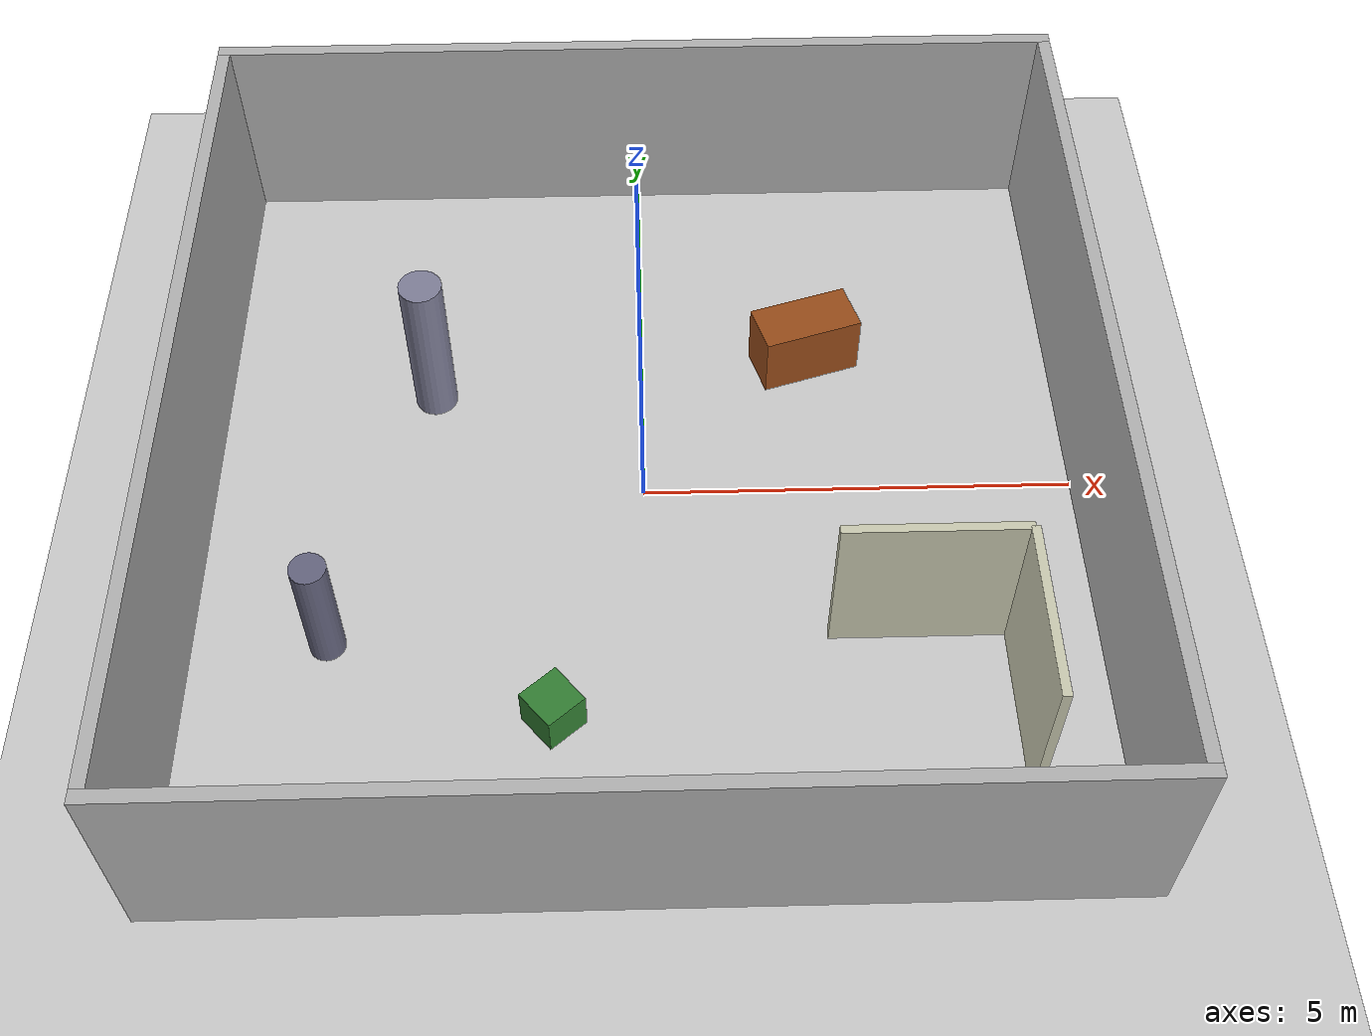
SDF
<sdf version="1.8">
 <world name="test_room">
  <plugin filename="ignition-gazebo-physics-system" name="ignition::gazebo::systems::Physics"/>
  <plugin filename="ignition-gazebo-sensors-system" name="ignition::gazebo::systems::Sensors">
   <render_engine>ogre2</render_engine>
  </plugin>
  <plugin filename="ignition-gazebo-scene-broadcaster-system" name="ignition::gazebo::systems::SceneBroadcaster"/>
  <plugin filename="ignition-gazebo-user-commands-system" name="ignition::gazebo::systems::UserCommands"/>
  <physics name="1ms" type="ode">
   <max_step_size>0.001</max_step_size>
   <real_time_factor>1.0</real_time_factor>
  </physics>
  <scene>
   <ambient>0.4 0.4 0.4 1.0</ambient>
   <background>0.7 0.8 0.9 1.0</background>
   <grid>true</grid>
   <origin_visual>true</origin_visual>
  </scene>
  <light type="directional" name="sun">
   <pose>0 0 10 0 0 0</pose>
   <diffuse>0.8 0.8 0.8 1</diffuse>
   <specular>0.2 0.2 0.2 1</specular>
   <direction>-0.5 0.1 -0.9</direction>
   <attenuation>
    <range>1000</range>
    <constant>0.9</constant>
    <linear>0.01</linear>
    <quadratic>0.001</quadratic>
   </attenuation>
  </light>
  <model name="ground_plane">
   <static>true</static>
   <link name="link">
    <collision name="collision">
     <geometry><plane><normal>0 0 1</normal><size>100 100</size></plane></geometry>
    </collision>
    <visual name="visual">
     <geometry><plane><normal>0 0 1</normal><size>100 100</size></plane></geometry>
     <material>
      <ambient>0.8 0.8 0.8 1</ambient>
      <diffuse>0.8 0.8 0.8 1</diffuse>
      <specular>0.2 0.2 0.2 1</specular>
     </material>
    </visual>
   </link>
  </model>
  <model name="wall_north">
   <static>true</static>
   <pose>0 5.075 1.25 0 0 0</pose>
   <link name="link">
    <collision name="collision"><geometry><box><size>10.3 0.15 2.5</size></box></geometry></collision>
    <visual name="visual">
     <geometry><box><size>10.3 0.15 2.5</size></box></geometry>
     <material><ambient>0.7 0.7 0.7 1</ambient><diffuse>0.7 0.7 0.7 1</diffuse></material>
    </visual>
   </link>
  </model>
  <model name="wall_south">
   <static>true</static>
   <pose>0 -5.075 1.25 0 0 0</pose>
   <link name="link">
    <collision name="collision"><geometry><box><size>10.3 0.15 2.5</size></box></geometry></collision>
    <visual name="visual">
     <geometry><box><size>10.3 0.15 2.5</size></box></geometry>
     <material><ambient>0.7 0.7 0.7 1</ambient><diffuse>0.7 0.7 0.7 1</diffuse></material>
    </visual>
   </link>
  </model>
  <model name="wall_east">
   <static>true</static>
   <pose>5.075 0 1.25 0 0 0</pose>
   <link name="link">
    <collision name="collision"><geometry><box><size>0.15 10 2.5</size></box></geometry></collision>
    <visual name="visual">
     <geometry><box><size>0.15 10 2.5</size></box></geometry>
     <material><ambient>0.7 0.7 0.7 1</ambient><diffuse>0.7 0.7 0.7 1</diffuse></material>
    </visual>
   </link>
  </model>
  <model name="wall_west">
   <static>true</static>
   <pose>-5.075 0 1.25 0 0 0</pose>
   <link name="link">
    <collision name="collision"><geometry><box><size>0.15 10 2.5</size></box></geometry></collision>
    <visual name="visual">
     <geometry><box><size>0.15 10 2.5</size></box></geometry>
     <material><ambient>0.7 0.7 0.7 1</ambient><diffuse>0.7 0.7 0.7 1</diffuse></material>
    </visual>
   </link>
  </model>
  <model name="obstacle_table">
   <static>true</static>
   <pose>2.0 2.0 0.4 0 0 0.3</pose>
   <link name="link">
    <collision name="collision"><geometry><box><size>1.2 0.6 0.8</size></box></geometry></collision>
    <visual name="visual">
     <geometry><box><size>1.2 0.6 0.8</size></box></geometry>
     <material><ambient>0.6 0.3 0.1 1</ambient><diffuse>0.6 0.3 0.1 1</diffuse></material>
    </visual>
   </link>
  </model>
  <model name="obstacle_column">
   <static>true</static>
   <pose>-2.5 1.5 1.0 0 0 0</pose>
   <link name="link">
    <collision name="collision">
     <geometry><cylinder><radius>0.25</radius><length>2.0</length></cylinder></geometry>
    </collision>
    <visual name="visual">
     <geometry><cylinder><radius>0.25</radius><length>2.0</length></cylinder></geometry>
     <material><ambient>0.5 0.5 0.6 1</ambient><diffuse>0.5 0.5 0.6 1</diffuse></material>
    </visual>
   </link>
  </model>
  <model name="obstacle_crate">
   <static>true</static>
   <pose>-1.0 -3.0 0.25 0 0 0.7</pose>
   <link name="link">
    <collision name="collision"><geometry><box><size>0.5 0.5 0.5</size></box></geometry></collision>
    <visual name="visual">
     <geometry><box><size>0.5 0.5 0.5</size></box></geometry>
     <material><ambient>0.2 0.5 0.2 1</ambient><diffuse>0.2 0.5 0.2 1</diffuse></material>
    </visual>
   </link>
  </model>
  <model name="obstacle_partition_a">
   <static>true</static>
   <pose>3.0 -2.0 1.0 0 0 0</pose>
   <link name="link">
    <collision name="collision"><geometry><box><size>2.0 0.1 2.0</size></box></geometry></collision>
    <visual name="visual">
     <geometry><box><size>2.0 0.1 2.0</size></box></geometry>
     <material><ambient>0.8 0.8 0.7 1</ambient><diffuse>0.8 0.8 0.7 1</diffuse></material>
    </visual>
   </link>
  </model>
  <model name="obstacle_partition_b">
   <static>true</static>
   <pose>4.0 -3.0 1.0 0 0 1.5708</pose>
   <link name="link">
    <collision name="collision"><geometry><box><size>2.0 0.1 2.0</size></box></geometry></collision>
    <visual name="visual">
     <geometry><box><size>2.0 0.1 2.0</size></box></geometry>
     <material><ambient>0.8 0.8 0.7 1</ambient><diffuse>0.8 0.8 0.7 1</diffuse></material>
    </visual>
   </link>
  </model>
  <model name="obstacle_column2">
   <static>true</static>
   <pose>-3.5 -2.0 0.75 0 0 0</pose>
   <link name="link">
    <collision name="collision">
     <geometry><cylinder><radius>0.2</radius><length>1.5</length></cylinder></geometry>
    </collision>
    <visual name="visual">
     <geometry><cylinder><radius>0.2</radius><length>1.5</length></cylinder></geometry>
     <material><ambient>0.4 0.4 0.5 1</ambient><diffuse>0.4 0.4 0.5 1</diffuse></material>
    </visual>
   </link>
  </model>
  <light type="point" name="ceiling_light_1">
   <pose>0 0 2.4 0 0 0</pose>
   <diffuse>0.8 0.8 0.8 1</diffuse>
   <specular>0.2 0.2 0.2 1</specular>
   <attenuation>
    <range>15</range>
    <constant>0.5</constant>
    <linear>0.05</linear>
    <quadratic>0.01</quadratic>
   </attenuation>
   <cast_shadows>false</cast_shadows>
  </light>
  <light type="point" name="ceiling_light_2">
   <pose>3 3 2.4 0 0 0</pose>
   <diffuse>0.6 0.6 0.6 1</diffuse>
   <specular>0.1 0.1 0.1 1</specular>
   <attenuation>
    <range>12</range>
    <constant>0.5</constant>
    <linear>0.05</linear>
    <quadratic>0.01</quadratic>
   </attenuation>
   <cast_shadows>false</cast_shadows>
  </light>
  <light type="point" name="ceiling_light_3">
   <pose>-3 -3 2.4 0 0 0</pose>
   <diffuse>0.6 0.6 0.6 1</diffuse>
   <specular>0.1 0.1 0.1 1</specular>
   <attenuation>
    <range>12</range>
    <constant>0.5</constant>
    <linear>0.05</linear>
    <quadratic>0.01</quadratic>
   </attenuation>
   <cast_shadows>false</cast_shadows>
  </light>
 </world>
</sdf>
